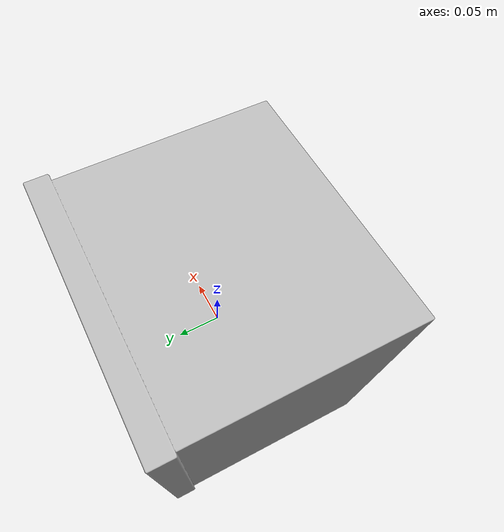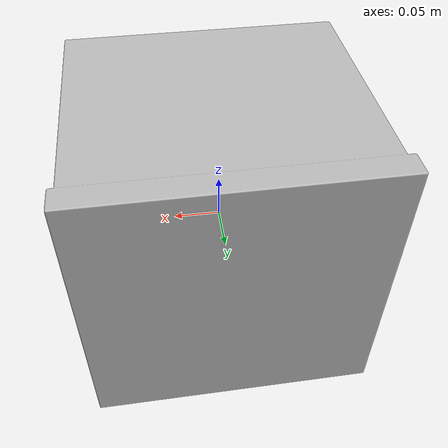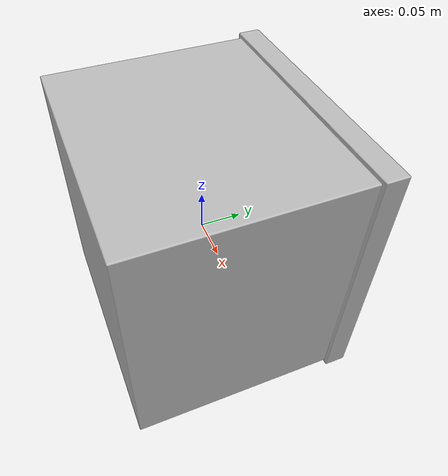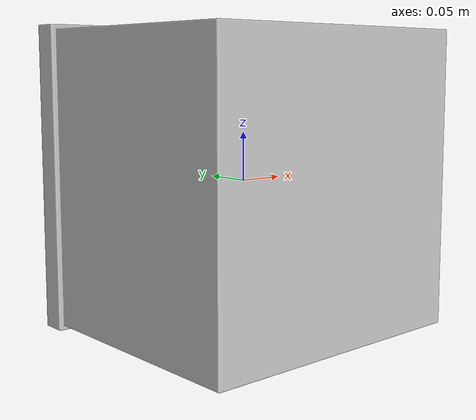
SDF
<?xml version="1.0"?>
<sdf version="1.6">
  <model name="box_green_model">
    <static>false</static>

    <link name="link">
      <pose>0 0 0 0 0 0</pose>

      <!-- VISUAL (solo grafica) -->
      <visual name="visual">
      <pose>-0.075 -0.145 0.0 0 0 0</pose>
        <geometry>
          <mesh>
            <uri>model://home/user/xbot2_ws/install/share/centauro_gazebo/models/box_green_model/meshes/green_box.obj</uri>
            <scale>0.012 0.01 0.008</scale>
          </mesh>
        </geometry>
      </visual>

      <!-- COLLISION (fisica reale) -->
      <collision name="collision">
        <geometry>
          <box>
            <size>0.285 0.275 0.285</size>
          </box>
        </geometry>

        <surface>
          <friction>
            <ode>
              <mu>10.0</mu>
              <mu2>10.0</mu2>
              <slip1>0.0</slip1>
              <slip2>0.0</slip2>
            </ode>
          </friction>

        </surface>

      </collision>

      <!-- Aggiungiamo massa e inerzia (importantissimo se static=false) -->
      <inertial>
        <mass>2</mass>
        <inertia>
          <ixx>10000</ixx>
          <iyy>10000</iyy>
          <izz>10000</izz>
          <ixy>0.0</ixy>
          <ixz>0.0</ixz>
          <iyz>0.0</iyz>
        </inertia>
      </inertial>

    </link>
  </model>
</sdf>
